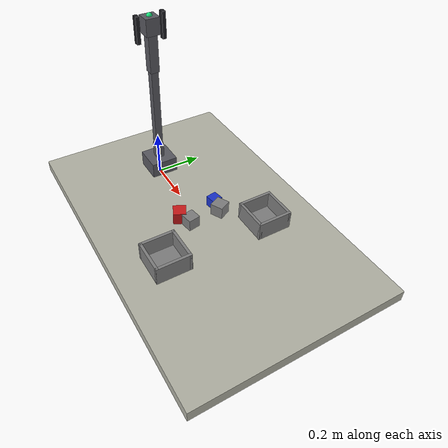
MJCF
<mujoco model="Autonomous reference tabletop arm scene_task_req_a_tabletop_robot_arm_that_sorts_red_and_blue_blo_holdout_002">
  <compiler angle="radian" coordinate="local" />
  <option timestep="0.002" gravity="0 0 -9.81" />
  <!-- scene_set_id=scenes_task_req_a_tabletop_robot_arm_that_sorts_red_and_blue_blo_holdout scene_id=scene_task_req_a_tabletop_robot_arm_that_sorts_red_and_blue_blo_holdout_002 -->
  <default>
    <joint damping="0.8" armature="0.01" />
    <geom friction="1 0.1 0.01" />
  </default>
  <asset>
    <material name="mat_red" rgba="0.8 0.1 0.1 1" />
    <material name="mat_blue" rgba="0.1 0.2 0.8 1" />
    <material name="mat_gray" rgba="0.5 0.5 0.5 1" />
    <material name="mat_link" rgba="0.35 0.35 0.38 1" />
  </asset>
  <worldbody>
    <light name="key" pos="0 0 2" dir="0 0 -1" />
    <geom name="table" type="box" size="0.7 0.45 0.025" pos="0.4 0 0" rgba="0.7 0.7 0.65 1" />
    <body name="base_link" pos="0.0 0.0 0.025">
      <geom name="base_link_geom" type="box" size="0.06 0.06 0.035" pos="0 0 0.035" mass="0.45" material="mat_link" />
      <body name="upper_link" pos="0.0 0.0 0.07">
        <joint name="base_yaw" type="hinge" axis="0.0 0.0 1.0" pos="0 0 0" limited="true" range="-3.14 3.14" />
        <geom name="upper_link_geom" type="box" size="0.018 0.018 0.035" pos="0 0 0.035" mass="0.22" material="mat_link" />
        <body name="forearm_link" pos="0.0 0.0 0.07">
          <joint name="shoulder_pitch" type="hinge" axis="0.0 1.0 0.0" pos="0 0 0" limited="true" range="-1.57 1.57" />
          <geom name="forearm_link_geom" type="box" size="0.016 0.016 0.1785" pos="0 0 0.1785" mass="0.18" material="mat_link" />
          <body name="wrist_link" pos="0.0 0.0 0.357">
            <joint name="elbow_pitch" type="hinge" axis="0.0 1.0 0.0" pos="0 0 0" limited="true" range="-1.57 1.57" />
            <geom name="wrist_link_geom" type="box" size="0.02 0.02 0.08" pos="0 0 0.08" mass="0.035" material="mat_link" />
            <camera name="wrist_rgbd_camera" pos="0.03 0.0 0.04" xyaxes="0 -1 0 0 0 1" mode="fixed" user="0.0 0.0 0.0" />
            <body name="gripper_link" pos="0.0 0.0 0.16">
              <geom name="gripper_link_geom" type="box" size="0.03 0.03 0.035" pos="0 0 0.035" mass="0.04" material="mat_link" />
              <site name="ee_site" pos="0 0 0.07" size="0.012" rgba="0.1 0.9 0.5 1" />
              <site name="grasp_site" pos="0 0 0.015" size="0.01" rgba="1 0.7 0.1 1" />
              <body name="left_gripper_finger" pos="0 0.055 0.07">
                <joint name="left_gripper_slide" type="slide" axis="0 -1 0" limited="true" range="0 0.04" damping="2.0" />
                <geom name="left_gripper_pad" type="box" size="0.012 0.008 0.055" pos="0 0 -0.045" mass="0.025" rgba="0.12 0.12 0.14 1" friction="1.5 0.1 0.01" />
              </body>
              <body name="right_gripper_finger" pos="0 -0.055 0.07">
                <joint name="right_gripper_slide" type="slide" axis="0 1 0" limited="true" range="0 0.04" damping="2.0" />
                <geom name="right_gripper_pad" type="box" size="0.012 0.008 0.055" pos="0 0 -0.045" mass="0.025" rgba="0.12 0.12 0.14 1" friction="1.5 0.1 0.01" />
              </body>
            </body>
          </body>
        </body>
      </body>
    </body>
    <body name="obj_red_block" pos="0.3646 -0.085 0.0535" euler="0 0 -0.4691">
      <freejoint name="free_red_block" />
      <geom name="red_block" type="box" size="0.0275 0.0275 0.0275" mass="0.0432" friction="0.949 0.1 0.01" material="mat_red" />
    </body>
    <body name="obj_blue_block" pos="0.36 0.085 0.0495" euler="0 0 1.7512">
      <freejoint name="free_blue_block" />
      <geom name="blue_block" type="box" size="0.0235 0.0235 0.0235" mass="0.0688" friction="0.966 0.1 0.01" material="mat_blue" />
    </body>
    <geom name="red_bin" type="box" size="0.07 0.07 0.004" pos="0.55 -0.2428 0.029" material="mat_gray" />
    <geom name="red_bin_wall_px" type="box" size="0.006 0.07600000000000001 0.04" pos="0.62 -0.2428 0.065" material="mat_gray" />
    <geom name="red_bin_wall_nx" type="box" size="0.006 0.07600000000000001 0.04" pos="0.48 -0.2428 0.065" material="mat_gray" />
    <geom name="red_bin_wall_py" type="box" size="0.07600000000000001 0.006 0.04" pos="0.55 -0.1728 0.065" material="mat_gray" />
    <geom name="red_bin_wall_ny" type="box" size="0.07600000000000001 0.006 0.04" pos="0.55 -0.3128 0.065" material="mat_gray" />
    <geom name="blue_bin" type="box" size="0.07 0.07 0.004" pos="0.55 0.212 0.029" material="mat_gray" />
    <geom name="blue_bin_wall_px" type="box" size="0.006 0.07600000000000001 0.04" pos="0.62 0.212 0.065" material="mat_gray" />
    <geom name="blue_bin_wall_nx" type="box" size="0.006 0.07600000000000001 0.04" pos="0.48 0.212 0.065" material="mat_gray" />
    <geom name="blue_bin_wall_py" type="box" size="0.07600000000000001 0.006 0.04" pos="0.55 0.282 0.065" material="mat_gray" />
    <geom name="blue_bin_wall_ny" type="box" size="0.07600000000000001 0.006 0.04" pos="0.55 0.142 0.065" material="mat_gray" />
    <body name="obj_distractor_2_0" pos="0.4157 -0.06 0.0522" euler="0 0 -2.9741">
      <freejoint name="free_distractor_2_0" />
      <geom name="distractor_2_0" type="box" size="0.0262 0.0262 0.0262" mass="0.0477" friction="1.263 0.1 0.01" material="mat_gray" />
    </body>
    <body name="obj_distractor_2_1" pos="0.4121 0.0813 0.0537" euler="0 0 -2.6759">
      <freejoint name="free_distractor_2_1" />
      <geom name="distractor_2_1" type="box" size="0.0277 0.0277 0.0277" mass="0.0636" friction="0.963 0.1 0.01" material="mat_gray" />
    </body>
  </worldbody>
  <actuator>
    <motor name="base_yaw_motor" joint="base_yaw" gear="1" forcerange="-12.0 12.0" />
    <motor name="shoulder_pitch_motor" joint="shoulder_pitch" gear="1" forcerange="-12.0 12.0" />
    <motor name="elbow_pitch_motor" joint="elbow_pitch" gear="1" forcerange="-12.0 12.0" />
    <motor name="left_gripper_slide_motor" joint="left_gripper_slide" gear="1" forcerange="-25 25" />
    <motor name="right_gripper_slide_motor" joint="right_gripper_slide" gear="1" forcerange="-25 25" />
  </actuator>
  <sensor>
    <framepos name="wrist_rgbd_camera_pose" objtype="camera" objname="wrist_rgbd_camera" />
    <framequat name="wrist_rgbd_camera_orientation" objtype="camera" objname="wrist_rgbd_camera" />
  </sensor>
</mujoco>
